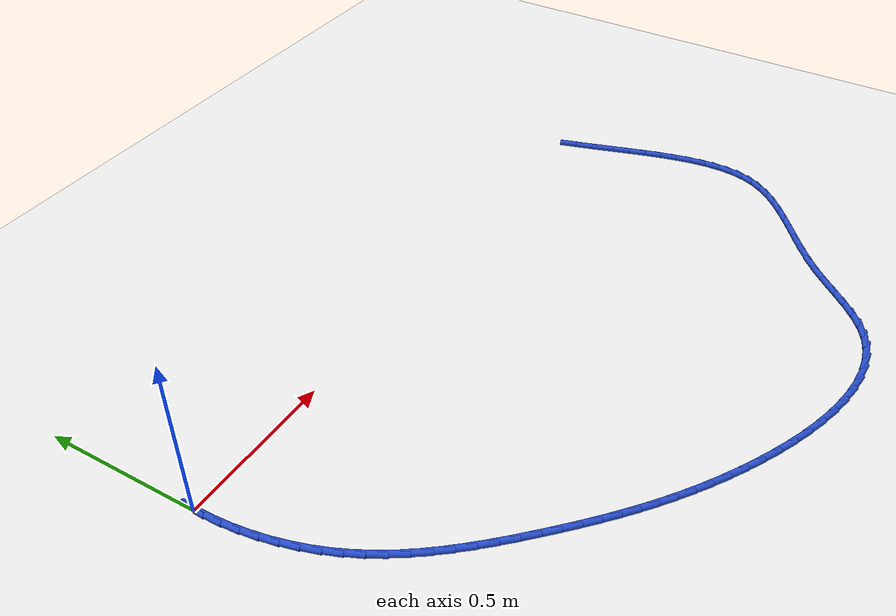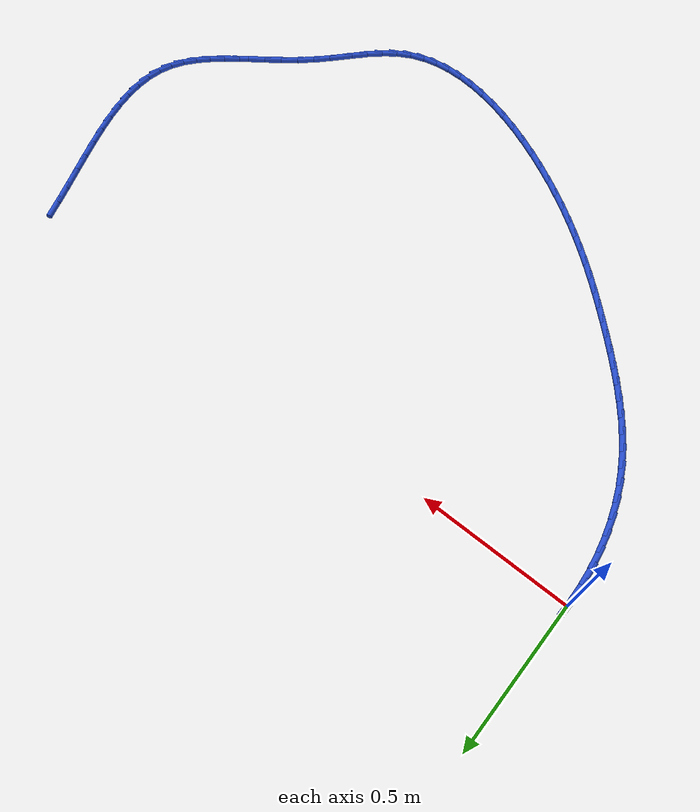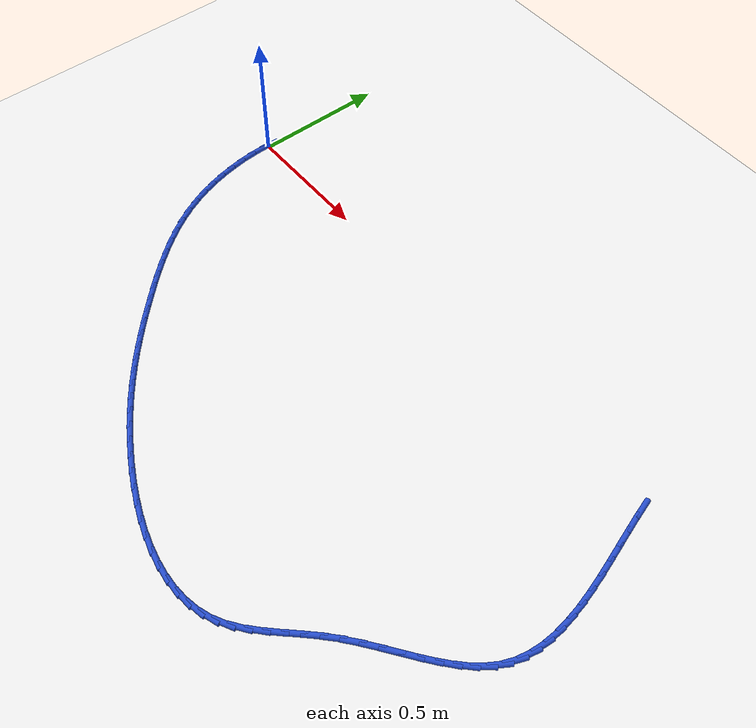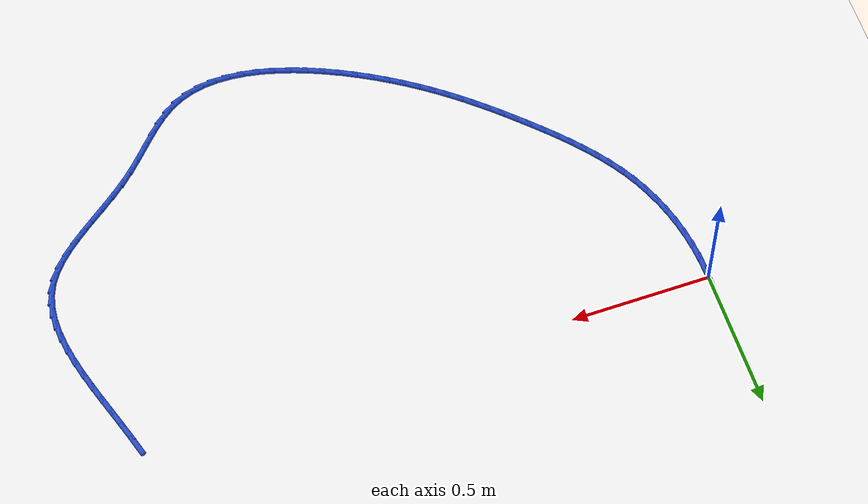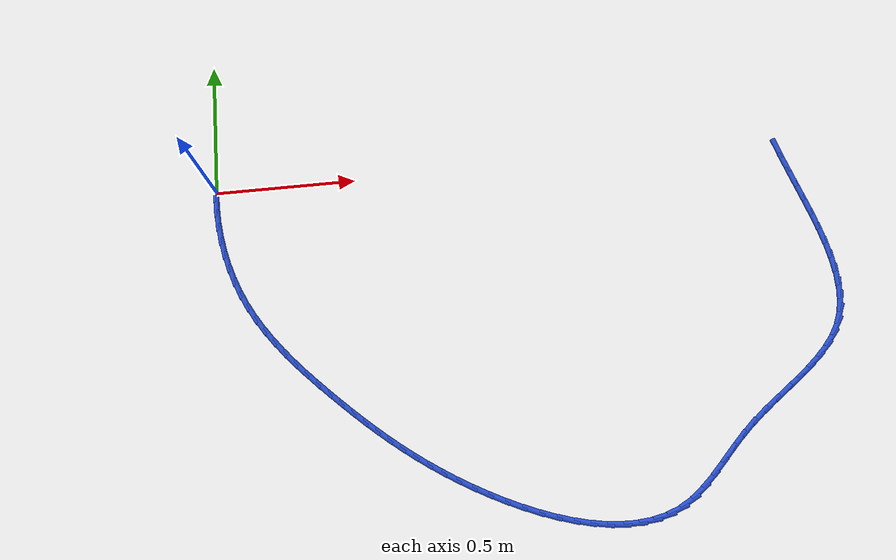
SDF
<sdf version="1.6">
 <world name="default">
  <model name="ground_plane">
   <static>1</static>
   <link name="link">
    <collision name="collision">
     <geometry><plane><normal>0 0 1</normal><size>100 100</size></plane></geometry>
     <surface><friction><ode><mu>100</mu><mu2>50</mu2></ode></friction></surface>
    </collision>
    <visual name="visual">
     <cast_shadows>0</cast_shadows>
     <geometry><plane><normal>0 0 1</normal><size>100 100</size></plane></geometry>
     <material>
      <script><uri>file://media/materials/scripts/gazebo.material</uri><name>Gazebo/WhiteGlow</name></script>
     </material>
    </visual>
   </link>
  </model>
  <model name="line">
   <link name="link_0">
    <pose>-4.5102810375396984e-17 1.8041124150158794e-16 0.01 0 1.57 1.5296454746573978</pose>
    <collision name="collision">
     <geometry><cylinder><radius>0.01</radius><length>0.08</length></cylinder></geometry>
    </collision>
    <visual name="visual">
     <material>
      <script><name>Gazebo/Blue</name><uri>file://media/materials/scripts/gazebo.material</uri></script>
     </material>
     <geometry><cylinder><radius>0.01</radius><length>0.08</length></cylinder></geometry>
    </visual>
   </link>
   <link name="link_71">
    <pose>2.044629872431118 -0.03134437617193089 0.01 0 1.57 -1.2846464202993828</pose>
    <collision name="collision">
     <geometry><cylinder><radius>0.01</radius><length>0.08</length></cylinder></geometry>
    </collision>
    <visual name="visual">
     <material>
      <script><name>Gazebo/Blue</name><uri>file://media/materials/scripts/gazebo.material</uri></script>
     </material>
     <geometry><cylinder><radius>0.01</radius><length>0.08</length></cylinder></geometry>
    </visual>
   </link>
   <link name="link_72">
    <pose>2.061421483469755 -0.08841509417196947 0.01 0 1.57 -1.2688365653599714</pose>
    <collision name="collision">
     <geometry><cylinder><radius>0.01</radius><length>0.08</length></cylinder></geometry>
    </collision>
    <visual name="visual">
     <material>
      <script><name>Gazebo/Blue</name><uri>file://media/materials/scripts/gazebo.material</uri></script>
     </material>
     <geometry><cylinder><radius>0.01</radius><length>0.08</length></cylinder></geometry>
    </visual>
   </link>
   <link name="link_73">
    <pose>2.079237217500759 -0.14561124476211676 0.01 0 1.57 -1.2632478146298742</pose>
    <collision name="collision">
     <geometry><cylinder><radius>0.01</radius><length>0.08</length></cylinder></geometry>
    </collision>
    <visual name="visual">
     <material>
      <script><name>Gazebo/Blue</name><uri>file://media/materials/scripts/gazebo.material</uri></script>
     </material>
     <geometry><cylinder><radius>0.01</radius><length>0.08</length></cylinder></geometry>
    </visual>
   </link>
   <link name="link_74">
    <pose>2.097365198884924 -0.20268449417894266 0.01 0 1.57 -1.2677672863972622</pose>
    <collision name="collision">
     <geometry><cylinder><radius>0.01</radius><length>0.08</length></cylinder></geometry>
    </collision>
    <visual name="visual">
     <material>
      <script><name>Gazebo/Blue</name><uri>file://media/materials/scripts/gazebo.material</uri></script>
     </material>
     <geometry><cylinder><radius>0.01</radius><length>0.08</length></cylinder></geometry>
    </visual>
   </link>
   <link name="link_75">
    <pose>2.115093551983041 -0.25938650865901997 0.01 0 1.57 -1.2827436958456733</pose>
    <collision name="collision">
     <geometry><cylinder><radius>0.01</radius><length>0.08</length></cylinder></geometry>
    </collision>
    <visual name="visual">
     <material>
      <script><name>Gazebo/Blue</name><uri>file://media/materials/scripts/gazebo.material</uri></script>
     </material>
     <geometry><cylinder><radius>0.01</radius><length>0.08</length></cylinder></geometry>
    </visual>
   </link>
   <link name="link_76">
    <pose>2.131710401155903 -0.3154689544389202 0.01 0 1.57 -1.3090175999598392</pose>
    <collision name="collision">
     <geometry><cylinder><radius>0.01</radius><length>0.08</length></cylinder></geometry>
    </collision>
    <visual name="visual">
     <material>
      <script><name>Gazebo/Blue</name><uri>file://media/materials/scripts/gazebo.material</uri></script>
     </material>
     <geometry><cylinder><radius>0.01</radius><length>0.08</length></cylinder></geometry>
    </visual>
   </link>
   <link name="link_77">
    <pose>2.1465038707643016 -0.37068349775521536 0.01 0 1.57 -1.3479676268478287</pose>
    <collision name="collision">
     <geometry><cylinder><radius>0.01</radius><length>0.08</length></cylinder></geometry>
    </collision>
    <visual name="visual">
     <material>
      <script><name>Gazebo/Blue</name><uri>file://media/materials/scripts/gazebo.material</uri></script>
     </material>
     <geometry><cylinder><radius>0.01</radius><length>0.08</length></cylinder></geometry>
    </visual>
   </link>
   <link name="link_78">
    <pose>2.1587620851690295 -0.42478180484447764 0.01 0 1.57 -1.401552070078066</pose>
    <collision name="collision">
     <geometry><cylinder><radius>0.01</radius><length>0.08</length></cylinder></geometry>
    </collision>
    <visual name="visual">
     <material>
      <script><name>Gazebo/Blue</name><uri>file://media/materials/scripts/gazebo.material</uri></script>
     </material>
     <geometry><cylinder><radius>0.01</radius><length>0.08</length></cylinder></geometry>
    </visual>
   </link>
   <link name="link_79">
    <pose>2.1677731687308794 -0.4775155419432776 0.01 0 1.57 -1.4722899991010994</pose>
    <collision name="collision">
     <geometry><cylinder><radius>0.01</radius><length>0.08</length></cylinder></geometry>
    </collision>
    <visual name="visual">
     <material>
      <script><name>Gazebo/Blue</name><uri>file://media/materials/scripts/gazebo.material</uri></script>
     </material>
     <geometry><cylinder><radius>0.01</radius><length>0.08</length></cylinder></geometry>
    </visual>
   </link>
   <link name="link_80">
    <pose>2.172825245810642 -0.5286363752881873 0.01 0 1.57 -1.5630579898648487</pose>
    <collision name="collision">
     <geometry><cylinder><radius>0.01</radius><length>0.08</length></cylinder></geometry>
    </collision>
    <visual name="visual">
     <material>
      <script><name>Gazebo/Blue</name><uri>file://media/materials/scripts/gazebo.material</uri></script>
     </material>
     <geometry><cylinder><radius>0.01</radius><length>0.08</length></cylinder></geometry>
    </visual>
   </link>
   <link name="link_81">
    <pose>2.173206440769112 -0.577895971115779 0.01 0 1.57 1.4651139113369158</pose>
    <collision name="collision">
     <geometry><cylinder><radius>0.01</radius><length>0.08</length></cylinder></geometry>
    </collision>
    <visual name="visual">
     <material>
      <script><name>Gazebo/Blue</name><uri>file://media/materials/scripts/gazebo.material</uri></script>
     </material>
     <geometry><cylinder><radius>0.01</radius><length>0.08</length></cylinder></geometry>
    </visual>
   </link>
   <link name="link_82">
    <pose>2.168204877967081 -0.6250459956626249 0.01 0 1.57 1.327958544917127</pose>
    <collision name="collision">
     <geometry><cylinder><radius>0.01</radius><length>0.08</length></cylinder></geometry>
    </collision>
    <visual name="visual">
     <material>
      <script><name>Gazebo/Blue</name><uri>file://media/materials/scripts/gazebo.material</uri></script>
     </material>
     <geometry><cylinder><radius>0.01</radius><length>0.08</length></cylinder></geometry>
    </visual>
   </link>
   <link name="link_83">
    <pose>2.1571086817653407 -0.6698381151652953 0.01 0 1.57 1.16945373037617</pose>
    <collision name="collision">
     <geometry><cylinder><radius>0.01</radius><length>0.08</length></cylinder></geometry>
    </collision>
    <visual name="visual">
     <material>
      <script><name>Gazebo/Blue</name><uri>file://media/materials/scripts/gazebo.material</uri></script>
     </material>
     <geometry><cylinder><radius>0.01</radius><length>0.08</length></cylinder></geometry>
    </visual>
   </link>
   <link name="link_84">
    <pose>2.1392059765249893 -0.7120239958604985 0.01 0 1.57 1.0041842877567322</pose>
    <collision name="collision">
     <geometry><cylinder><radius>0.01</radius><length>0.08</length></cylinder></geometry>
    </collision>
    <visual name="visual">
     <material>
      <script><name>Gazebo/Blue</name><uri>file://media/materials/scripts/gazebo.material</uri></script>
     </material>
     <geometry><cylinder><radius>0.01</radius><length>0.08</length></cylinder></geometry>
    </visual>
   </link>
   <link name="link_85">
    <pose>2.114095788238602 -0.751493073283529 0.01 0 1.57 0.8683933330845575</pose>
    <collision name="collision">
     <geometry><cylinder><radius>0.01</radius><length>0.08</length></cylinder></geometry>
    </collision>
    <visual name="visual">
     <material>
      <script><name>Gazebo/Blue</name><uri>file://media/materials/scripts/gazebo.material</uri></script>
     </material>
     <geometry><cylinder><radius>0.01</radius><length>0.08</length></cylinder></geometry>
    </visual>
   </link>
   <link name="link_86">
    <pose>2.082617037616839 -0.7886842153570996 0.01 0 1.57 0.7686335841271243</pose>
    <collision name="collision">
     <geometry><cylinder><radius>0.01</radius><length>0.08</length></cylinder></geometry>
    </collision>
    <visual name="visual">
     <material>
      <script><name>Gazebo/Blue</name><uri>file://media/materials/scripts/gazebo.material</uri></script>
     </material>
     <geometry><cylinder><radius>0.01</radius><length>0.08</length></cylinder></geometry>
    </visual>
   </link>
   <link name="link_87">
    <pose>2.045917693865927 -0.8241732381256215 0.01 0 1.57 0.7003007215182602</pose>
    <collision name="collision">
     <geometry><cylinder><radius>0.01</radius><length>0.08</length></cylinder></geometry>
    </collision>
    <visual name="visual">
     <material>
      <script><name>Gazebo/Blue</name><uri>file://media/materials/scripts/gazebo.material</uri></script>
     </material>
     <geometry><cylinder><radius>0.01</radius><length>0.08</length></cylinder></geometry>
    </visual>
   </link>
   <link name="link_88">
    <pose>2.0051457261920933 -0.8585359576335035 0.01 0 1.57 0.6585568605974809</pose>
    <collision name="collision">
     <geometry><cylinder><radius>0.01</radius><length>0.08</length></cylinder></geometry>
    </collision>
    <visual name="visual">
     <material>
      <script><name>Gazebo/Blue</name><uri>file://media/materials/scripts/gazebo.material</uri></script>
     </material>
     <geometry><cylinder><radius>0.01</radius><length>0.08</length></cylinder></geometry>
    </visual>
   </link>
   <link name="link_89">
    <pose>1.9614491038015622 -0.8923481899251571 0.01 0 1.57 0.6397267551622451</pose>
    <collision name="collision">
     <geometry><cylinder><radius>0.01</radius><length>0.08</length></cylinder></geometry>
    </collision>
    <visual name="visual">
     <material>
      <script><name>Gazebo/Blue</name><uri>file://media/materials/scripts/gazebo.material</uri></script>
     </material>
     <geometry><cylinder><radius>0.01</radius><length>0.08</length></cylinder></geometry>
    </visual>
   </link>
   <link name="link_90">
    <pose>1.9159757959005603 -0.9261857510449923 0.01 0 1.57 0.6415852187041018</pose>
    <collision name="collision">
     <geometry><cylinder><radius>0.01</radius><length>0.08</length></cylinder></geometry>
    </collision>
    <visual name="visual">
     <material>
      <script><name>Gazebo/Blue</name><uri>file://media/materials/scripts/gazebo.material</uri></script>
     </material>
     <geometry><cylinder><radius>0.01</radius><length>0.08</length></cylinder></geometry>
    </visual>
   </link>
   <link name="link_91">
    <pose>1.8698737716953133 -0.9606244570374207 0.01 0 1.57 0.6632592107781868</pose>
    <collision name="collision">
     <geometry><cylinder><radius>0.01</radius><length>0.08</length></cylinder></geometry>
    </collision>
    <visual name="visual">
     <material>
      <script><name>Gazebo/Blue</name><uri>file://media/materials/scripts/gazebo.material</uri></script>
     </material>
     <geometry><cylinder><radius>0.01</radius><length>0.08</length></cylinder></geometry>
    </visual>
   </link>
   <link name="link_92">
    <pose>1.8242910003920478 -0.9962401239468511 0.01 0 1.57 0.7050256145618817</pose>
    <collision name="collision">
     <geometry><cylinder><radius>0.01</radius><length>0.08</length></cylinder></geometry>
    </collision>
    <visual name="visual">
     <material>
      <script><name>Gazebo/Blue</name><uri>file://media/materials/scripts/gazebo.material</uri></script>
     </material>
     <geometry><cylinder><radius>0.01</radius><length>0.08</length></cylinder></geometry>
    </visual>
   </link>
   <link name="link_93">
    <pose>1.7803754511969894 -1.0336085678176945 0.01 0 1.57 0.7633028262985336</pose>
    <collision name="collision">
     <geometry><cylinder><radius>0.01</radius><length>0.08</length></cylinder></geometry>
    </collision>
    <visual name="visual">
     <material>
      <script><name>Gazebo/Blue</name><uri>file://media/materials/scripts/gazebo.material</uri></script>
     </material>
     <geometry><cylinder><radius>0.01</radius><length>0.08</length></cylinder></geometry>
    </visual>
   </link>
   <link name="link_94">
    <pose>1.7390823418717614 -1.0731160698084714 0.01 0 1.57 0.8052573900368956</pose>
    <collision name="collision">
     <geometry><cylinder><radius>0.01</radius><length>0.08</length></cylinder></geometry>
    </collision>
    <visual name="visual">
     <material>
      <script><name>Gazebo/Blue</name><uri>file://media/materials/scripts/gazebo.material</uri></script>
     </material>
     <geometry><cylinder><radius>0.01</radius><length>0.08</length></cylinder></geometry>
    </visual>
   </link>
   <link name="link_95">
    <pose>1.6999888999110546 -1.1137939161590416 0.01 0 1.57 0.8157346430985165</pose>
    <collision name="collision">
     <geometry><cylinder><radius>0.01</radius><length>0.08</length></cylinder></geometry>
    </collision>
    <visual name="visual">
     <material>
      <script><name>Gazebo/Blue</name><uri>file://media/materials/scripts/gazebo.material</uri></script>
     </material>
     <geometry><cylinder><radius>0.01</radius><length>0.08</length></cylinder></geometry>
    </visual>
   </link>
   <link name="link_96">
    <pose>1.6620724947109167 -1.1540835452017084 0.01 0 1.57 0.7929659171845586</pose>
    <collision name="collision">
     <geometry><cylinder><radius>0.01</radius><length>0.08</length></cylinder></geometry>
    </collision>
    <visual name="visual">
     <material>
      <script><name>Gazebo/Blue</name><uri>file://media/materials/scripts/gazebo.material</uri></script>
     </material>
     <geometry><cylinder><radius>0.01</radius><length>0.08</length></cylinder></geometry>
    </visual>
   </link>
   <link name="link_97">
    <pose>1.624308026587648 -1.192423967392043 0.01 0 1.57 0.7336203923205585</pose>
    <collision name="collision">
     <geometry><cylinder><radius>0.01</radius><length>0.08</length></cylinder></geometry>
    </collision>
    <visual name="visual">
     <material>
      <script><name>Gazebo/Blue</name><uri>file://media/materials/scripts/gazebo.material</uri></script>
     </material>
     <geometry><cylinder><radius>0.01</radius><length>0.08</length></cylinder></geometry>
    </visual>
   </link>
   <link name="link_98">
    <pose>1.5856703958575498 -1.2272541931856165 0.01 0 1.57 0.6332735098976295</pose>
    <collision name="collision">
     <geometry><cylinder><radius>0.01</radius><length>0.08</length></cylinder></geometry>
    </collision>
    <visual name="visual">
     <material>
      <script><name>Gazebo/Blue</name><uri>file://media/materials/scripts/gazebo.material</uri></script>
     </material>
     <geometry><cylinder><radius>0.01</radius><length>0.08</length></cylinder></geometry>
    </visual>
   </link>
   <link name="link_99">
    <pose>1.5451345028369246 -1.257013233038 0.01 0 1.57 0.4910671326124244</pose>
    <collision name="collision">
     <geometry><cylinder><radius>0.01</radius><length>0.08</length></cylinder></geometry>
    </collision>
    <visual name="visual">
     <material>
      <script><name>Gazebo/Blue</name><uri>file://media/materials/scripts/gazebo.material</uri></script>
     </material>
     <geometry><cylinder><radius>0.01</radius><length>0.08</length></cylinder></geometry>
    </visual>
   </link>
   <link name="link_100">
    <pose>1.501733287303715 -1.280222452420368 0.01 0 1.57 0.3377209704262483</pose>
    <collision name="collision">
     <geometry><cylinder><radius>0.01</radius><length>0.08</length></cylinder></geometry>
    </collision>
    <visual name="visual">
     <material>
      <script><name>Gazebo/Blue</name><uri>file://media/materials/scripts/gazebo.material</uri></script>
     </material>
     <geometry><cylinder><radius>0.01</radius><length>0.08</length></cylinder></geometry>
    </visual>
   </link>
   <link name="link_101">
    <pose>1.4552942562338012 -1.296530666854787 0.01 0 1.57 0.1985432945511731</pose>
    <collision name="collision">
     <geometry><cylinder><radius>0.01</radius><length>0.08</length></cylinder></geometry>
    </collision>
    <visual name="visual">
     <material>
      <script><name>Gazebo/Blue</name><uri>file://media/materials/scripts/gazebo.material</uri></script>
     </material>
     <geometry><cylinder><radius>0.01</radius><length>0.08</length></cylinder></geometry>
    </visual>
   </link>
   <link name="link_102">
    <pose>1.40622086603541 -1.306403934531418 0.01 0 1.57 0.07632957501409585</pose>
    <collision name="collision">
     <geometry><cylinder><radius>0.01</radius><length>0.08</length></cylinder></geometry>
    </collision>
    <visual name="visual">
     <material>
      <script><name>Gazebo/Blue</name><uri>file://media/materials/scripts/gazebo.material</uri></script>
     </material>
     <geometry><cylinder><radius>0.01</radius><length>0.08</length></cylinder></geometry>
    </visual>
   </link>
   <link name="link_103">
    <pose>1.3549294649129666 -1.3103266064371977 0.01 0 1.57 -0.029064779685189574</pose>
    <collision name="collision">
     <geometry><cylinder><radius>0.01</radius><length>0.08</length></cylinder></geometry>
    </collision>
    <visual name="visual">
     <material>
      <script><name>Gazebo/Blue</name><uri>file://media/materials/scripts/gazebo.material</uri></script>
     </material>
     <geometry><cylinder><radius>0.01</radius><length>0.08</length></cylinder></geometry>
    </visual>
   </link>
   <link name="link_104">
    <pose>1.3018364010708967 -1.3087830335590647 0.01 0 1.57 -0.1192128851624312</pose>
    <collision name="collision">
     <geometry><cylinder><radius>0.01</radius><length>0.08</length></cylinder></geometry>
    </collision>
    <visual name="visual">
     <material>
      <script><name>Gazebo/Blue</name><uri>file://media/materials/scripts/gazebo.material</uri></script>
     </material>
     <geometry><cylinder><radius>0.01</radius><length>0.08</length></cylinder></geometry>
    </visual>
   </link>
   <link name="link_105">
    <pose>1.2473580227136258 -1.3022575668839553 0.01 0 1.57 -0.1962427901173266</pose>
    <collision name="collision">
     <geometry><cylinder><radius>0.01</radius><length>0.08</length></cylinder></geometry>
    </collision>
    <visual name="visual">
     <material>
      <script><name>Gazebo/Blue</name><uri>file://media/materials/scripts/gazebo.material</uri></script>
     </material>
     <geometry><cylinder><radius>0.01</radius><length>0.08</length></cylinder></geometry>
    </visual>
   </link>
   <link name="link_106">
    <pose>1.1919106780455797 -1.291234557398808 0.01 0 1.57 -0.26231674699623214</pose>
    <collision name="collision">
     <geometry><cylinder><radius>0.01</radius><length>0.08</length></cylinder></geometry>
    </collision>
    <visual name="visual">
     <material>
      <script><name>Gazebo/Blue</name><uri>file://media/materials/scripts/gazebo.material</uri></script>
     </material>
     <geometry><cylinder><radius>0.01</radius><length>0.08</length></cylinder></geometry>
    </visual>
   </link>
   <link name="link_107">
    <pose>1.1359107152711825 -1.2761983560905592 0.01 0 1.57 -0.3193913705651794</pose>
    <collision name="collision">
     <geometry><cylinder><radius>0.01</radius><length>0.08</length></cylinder></geometry>
    </collision>
    <visual name="visual">
     <material>
      <script><name>Gazebo/Blue</name><uri>file://media/materials/scripts/gazebo.material</uri></script>
     </material>
     <geometry><cylinder><radius>0.01</radius><length>0.08</length></cylinder></geometry>
    </visual>
   </link>
   <link name="link_108">
    <pose>1.0797744825948599 -1.2576333139461475 0.01 0 1.57 -0.3691436083499308</pose>
    <collision name="collision">
     <geometry><cylinder><radius>0.01</radius><length>0.08</length></cylinder></geometry>
    </collision>
    <visual name="visual">
     <material>
      <script><name>Gazebo/Blue</name><uri>file://media/materials/scripts/gazebo.material</uri></script>
     </material>
     <geometry><cylinder><radius>0.01</radius><length>0.08</length></cylinder></geometry>
    </visual>
   </link>
   <link name="link_109">
    <pose>1.0239183282210365 -1.2360237819525093 0.01 0 1.57 -0.41297772692147344</pose>
    <collision name="collision">
     <geometry><cylinder><radius>0.01</radius><length>0.08</length></cylinder></geometry>
    </collision>
    <visual name="visual">
     <material>
      <script><name>Gazebo/Blue</name><uri>file://media/materials/scripts/gazebo.material</uri></script>
     </material>
     <geometry><cylinder><radius>0.01</radius><length>0.08</length></cylinder></geometry>
    </visual>
   </link>
   <link name="link_110">
    <pose>0.9687586003541391 -1.2118541110965826 0.01 0 1.57 -0.45206525478417614</pose>
    <collision name="collision">
     <geometry><cylinder><radius>0.01</radius><length>0.08</length></cylinder></geometry>
    </collision>
    <visual name="visual">
     <material>
      <script><name>Gazebo/Blue</name><uri>file://media/materials/scripts/gazebo.material</uri></script>
     </material>
     <geometry><cylinder><radius>0.01</radius><length>0.08</length></cylinder></geometry>
    </visual>
   </link>
   <link name="link_111">
    <pose>0.9147116471985921 -1.1856086523653049 0.01 0 1.57 -0.4873949336342789</pose>
    <collision name="collision">
     <geometry><cylinder><radius>0.01</radius><length>0.08</length></cylinder></geometry>
    </collision>
    <visual name="visual">
     <material>
      <script><name>Gazebo/Blue</name><uri>file://media/materials/scripts/gazebo.material</uri></script>
     </material>
     <geometry><cylinder><radius>0.01</radius><length>0.08</length></cylinder></geometry>
    </visual>
   </link>
   <link name="link_112">
    <pose>0.8621938169588206 -1.1577717567456136 0.01 0 1.57 -0.5198320597543117</pose>
    <collision name="collision">
     <geometry><cylinder><radius>0.01</radius><length>0.08</length></cylinder></geometry>
    </collision>
    <visual name="visual">
     <material>
      <script><name>Gazebo/Blue</name><uri>file://media/materials/scripts/gazebo.material</uri></script>
     </material>
     <geometry><cylinder><radius>0.01</radius><length>0.08</length></cylinder></geometry>
    </visual>
   </link>
   <link name="link_113">
    <pose>0.8116188708479916 -1.128825749941779 0.01 0 1.57 -0.5506911408883514</pose>
    <collision name="collision">
     <geometry><cylinder><radius>0.01</radius><length>0.08</length></cylinder></geometry>
    </collision>
    <visual name="visual">
     <material>
      <script><name>Gazebo/Blue</name><uri>file://media/materials/scripts/gazebo.material</uri></script>
     </material>
     <geometry><cylinder><radius>0.01</radius><length>0.08</length></cylinder></geometry>
    </visual>
   </link>
   <link name="link_114">
    <pose>0.7631874885778818 -1.0990861421460034 0.01 0 1.57 -0.5810527011926484</pose>
    <collision name="collision">
     <geometry><cylinder><radius>0.01</radius><length>0.08</length></cylinder></geometry>
    </collision>
    <visual name="visual">
     <material>
      <script><name>Gazebo/Blue</name><uri>file://media/materials/scripts/gazebo.material</uri></script>
     </material>
     <geometry><cylinder><radius>0.01</radius><length>0.08</length></cylinder></geometry>
    </visual>
   </link>
   <link name="link_115">
    <pose>0.7167316450930559 -1.068579794962307 0.01 0 1.57 -0.6106573761209133</pose>
    <collision name="collision">
     <geometry><cylinder><radius>0.01</radius><length>0.08</length></cylinder></geometry>
    </collision>
    <visual name="visual">
     <material>
      <script><name>Gazebo/Blue</name><uri>file://media/materials/scripts/gazebo.material</uri></script>
     </material>
     <geometry><cylinder><radius>0.01</radius><length>0.08</length></cylinder></geometry>
    </visual>
   </link>
   <link name="link_116">
    <pose>0.6720466391020639 -1.037304857201475 0.01 0 1.57 -0.6391264515433946</pose>
    <collision name="collision">
     <geometry><cylinder><radius>0.01</radius><length>0.08</length></cylinder></geometry>
    </collision>
    <visual name="visual">
     <material>
      <script><name>Gazebo/Blue</name><uri>file://media/materials/scripts/gazebo.material</uri></script>
     </material>
     <geometry><cylinder><radius>0.01</radius><length>0.08</length></cylinder></geometry>
    </visual>
   </link>
   <link name="link_117">
    <pose>0.6289277693134546 -1.0052594776742918 0.01 0 1.57 -0.6660915208907963</pose>
    <collision name="collision">
     <geometry><cylinder><radius>0.01</radius><length>0.08</length></cylinder></geometry>
    </collision>
    <visual name="visual">
     <material>
      <script><name>Gazebo/Blue</name><uri>file://media/materials/scripts/gazebo.material</uri></script>
     </material>
     <geometry><cylinder><radius>0.01</radius><length>0.08</length></cylinder></geometry>
    </visual>
   </link>
   <link name="link_118">
    <pose>0.5871703344357797 -0.9724418051915443 0.01 0 1.57 -0.6912088056951492</pose>
    <collision name="collision">
     <geometry><cylinder><radius>0.01</radius><length>0.08</length></cylinder></geometry>
    </collision>
    <visual name="visual">
     <material>
      <script><name>Gazebo/Blue</name><uri>file://media/materials/scripts/gazebo.material</uri></script>
     </material>
     <geometry><cylinder><radius>0.01</radius><length>0.08</length></cylinder></geometry>
    </visual>
   </link>
   <link name="link_119">
    <pose>0.5465696331775881 -0.9388499885640166 0.01 0 1.57 -0.7141718146856084</pose>
    <collision name="collision">
     <geometry><cylinder><radius>0.01</radius><length>0.08</length></cylinder></geometry>
    </collision>
    <visual name="visual">
     <material>
      <script><name>Gazebo/Blue</name><uri>file://media/materials/scripts/gazebo.material</uri></script>
     </material>
     <geometry><cylinder><radius>0.01</radius><length>0.08</length></cylinder></geometry>
    </visual>
   </link>
   <link name="link_120">
    <pose>0.5069209642474298 -0.9044821766024944 0.01 0 1.57 -0.7347213769090307</pose>
    <collision name="collision">
     <geometry><cylinder><radius>0.01</radius><length>0.08</length></cylinder></geometry>
    </collision>
    <visual name="visual">
     <material>
      <script><name>Gazebo/Blue</name><uri>file://media/materials/scripts/gazebo.material</uri></script>
     </material>
     <geometry><cylinder><radius>0.01</radius><length>0.08</length></cylinder></geometry>
    </visual>
   </link>
   <link name="link_121">
    <pose>0.46801962635385436 -0.8693365181177624 0.01 0 1.57 -0.7526524841450288</pose>
    <collision name="collision">
     <geometry><cylinder><radius>0.01</radius><length>0.08</length></cylinder></geometry>
    </collision>
    <visual name="visual">
     <material>
      <script><name>Gazebo/Blue</name><uri>file://media/materials/scripts/gazebo.material</uri></script>
     </material>
     <geometry><cylinder><radius>0.01</radius><length>0.08</length></cylinder></geometry>
    </visual>
   </link>
   <link name="link_122">
    <pose>0.42966091820541147 -0.8334111619206059 0.01 0 1.57 -0.7678178083047845</pose>
    <collision name="collision">
     <geometry><cylinder><radius>0.01</radius><length>0.08</length></cylinder></geometry>
    </collision>
    <visual name="visual">
     <material>
      <script><name>Gazebo/Blue</name><uri>file://media/materials/scripts/gazebo.material</uri></script>
     </material>
     <geometry><cylinder><radius>0.01</radius><length>0.08</length></cylinder></geometry>
    </visual>
   </link>
   <link name="link_123">
    <pose>0.39164013851065177 -0.7967042568218109 0.01 0 1.57 -0.7804536657588778</pose>
    <collision name="collision">
     <geometry><cylinder><radius>0.01</radius><length>0.08</length></cylinder></geometry>
    </collision>
    <visual name="visual">
     <material>
      <script><name>Gazebo/Blue</name><uri>file://media/materials/scripts/gazebo.material</uri></script>
     </material>
     <geometry><cylinder><radius>0.01</radius><length>0.08</length></cylinder></geometry>
    </visual>
   </link>
   <link name="link_124">
    <pose>0.3537733283361311 -0.7592100719460166 0.01 0 1.57 -0.7953761321999677</pose>
    <collision name="collision">
     <geometry><cylinder><radius>0.01</radius><length>0.08</length></cylinder></geometry>
    </collision>
    <visual name="visual">
     <material>
      <script><name>Gazebo/Blue</name><uri>file://media/materials/scripts/gazebo.material</uri></script>
     </material>
     <geometry><cylinder><radius>0.01</radius><length>0.08</length></cylinder></geometry>
    </visual>
   </link>
   <link name="link_125">
    <pose>0.3161859373447448 -0.720865004104395 0.01 0 1.57 -0.8163288921497441</pose>
    <collision name="collision">
     <geometry><cylinder><radius>0.01</radius><length>0.08</length></cylinder></geometry>
    </collision>
    <visual name="visual">
     <material>
      <script><name>Gazebo/Blue</name><uri>file://media/materials/scripts/gazebo.material</uri></script>
     </material>
     <geometry><cylinder><radius>0.01</radius><length>0.08</length></cylinder></geometry>
    </visual>
   </link>
   <link name="link_126">
    <pose>0.2792411092569677 -0.6815609914047329 0.01 0 1.57 -0.8435085547798359</pose>
    <collision name="collision">
     <geometry><cylinder><radius>0.01</radius><length>0.08</length></cylinder></geometry>
    </collision>
    <visual name="visual">
     <material>
      <script><name>Gazebo/Blue</name><uri>file://media/materials/scripts/gazebo.material</uri></script>
     </material>
     <geometry><cylinder><radius>0.01</radius><length>0.08</length></cylinder></geometry>
    </visual>
   </link>
   <link name="link_127">
    <pose>0.24330807391452128 -0.6411888335962831 0.01 0 1.57 -0.8770897573763033</pose>
    <collision name="collision">
     <geometry><cylinder><radius>0.01</radius><length>0.08</length></cylinder></geometry>
    </collision>
    <visual name="visual">
     <material>
      <script><name>Gazebo/Blue</name><uri>file://media/materials/scripts/gazebo.material</uri></script>
     </material>
     <geometry><cylinder><radius>0.01</radius><length>0.08</length></cylinder></geometry>
    </visual>
   </link>
   <link name="link_128">
    <pose>0.20875606115912518 -0.5996393304282968 0.01 0 1.57 -0.9172903610521179</pose>
    <collision name="collision">
     <geometry><cylinder><radius>0.01</radius><length>0.08</length></cylinder></geometry>
    </collision>
    <visual name="visual">
     <material>
      <script><name>Gazebo/Blue</name><uri>file://media/materials/scripts/gazebo.material</uri></script>
     </material>
     <geometry><cylinder><radius>0.01</radius><length>0.08</length></cylinder></geometry>
    </visual>
   </link>
   <link name="link_129">
    <pose>0.1759543008324998 -0.5568032816500257 0.01 0 1.57 -0.9643311917962285</pose>
    <collision name="collision">
     <geometry><cylinder><radius>0.01</radius><length>0.08</length></cylinder></geometry>
    </collision>
    <visual name="visual">
     <material>
      <script><name>Gazebo/Blue</name><uri>file://media/materials/scripts/gazebo.material</uri></script>
     </material>
     <geometry><cylinder><radius>0.01</radius><length>0.08</length></cylinder></geometry>
    </visual>
   </link>
   <link name="link_130">
    <pose>0.14527202277636528 -0.5125714870107215 0.01 0 1.57 -1.0183823986611384</pose>
    <collision name="collision">
     <geometry><cylinder><radius>0.01</radius><length>0.08</length></cylinder></geometry>
    </collision>
    <visual name="visual">
     <material>
      <script><name>Gazebo/Blue</name><uri>file://media/materials/scripts/gazebo.material</uri></script>
     </material>
     <geometry><cylinder><radius>0.01</radius><length>0.08</length></cylinder></geometry>
    </visual>
   </link>
   <link name="link_131">
    <pose>0.11707845683244178 -0.46683474625963584 0.01 0 1.57 -1.0794537894784706</pose>
    <collision name="collision">
     <geometry><cylinder><radius>0.01</radius><length>0.08</length></cylinder></geometry>
    </collision>
    <visual name="visual">
     <material>
      <script><name>Gazebo/Blue</name><uri>file://media/materials/scripts/gazebo.material</uri></script>
     </material>
     <geometry><cylinder><radius>0.01</radius><length>0.08</length></cylinder></geometry>
    </visual>
   </link>
   <link name="link_132">
    <pose>0.09174111458606635 -0.41948530653005367 0.01 0 1.57 -1.144297913619835</pose>
    <collision name="collision">
     <geometry><cylinder><radius>0.01</radius><length>0.08</length></cylinder></geometry>
    </collision>
    <visual name="visual">
     <material>
      <script><name>Gazebo/Blue</name><uri>file://media/materials/scripts/gazebo.material</uri></script>
     </material>
     <geometry><cylinder><radius>0.01</radius><length>0.08</length></cylinder></geometry>
    </visual>
   </link>
   <link name="link_133">
    <pose>0.06949498476046875 -0.3705270464185964 0.01 0 1.57 -1.2076121998237819</pose>
    <collision name="collision">
     <geometry><cylinder><radius>0.01</radius><length>0.08</length></cylinder></geometry>
    </collision>
    <visual name="visual">
     <material>
      <script><name>Gazebo/Blue</name><uri>file://media/materials/scripts/gazebo.material</uri></script>
     </material>
     <geometry><cylinder><radius>0.01</radius><length>0.08</length></cylinder></geometry>
    </visual>
   </link>
   <link name="link_134">
    <pose>0.05035065729407766 -0.32015286824443806 0.01 0 1.57 -1.2690558415701874</pose>
    <collision name="collision">
     <geometry><cylinder><radius>0.01</radius><length>0.08</length></cylinder></geometry>
    </collision>
    <visual name="visual">
     <material>
      <script><name>Gazebo/Blue</name><uri>file://media/materials/scripts/gazebo.material</uri></script>
     </material>
     <geometry><cylinder><radius>0.01</radius><length>0.08</length></cylinder></geometry>
    </visual>
   </link>
   <link name="link_135">
    <pose>0.03429701536476662 -0.26857395915252813 0.01 0 1.57 -1.328846178293434</pose>
    <collision name="collision">
     <geometry><cylinder><radius>0.01</radius><length>0.08</length></cylinder></geometry>
    </collision>
    <visual name="visual">
     <material>
      <script><name>Gazebo/Blue</name><uri>file://media/materials/scripts/gazebo.material</uri></script>
     </material>
     <geometry><cylinder><radius>0.01</radius><length>0.08</length></cylinder></geometry>
    </visual>
   </link>
   <link name="link_136">
    <pose>0.02132294215040993 -0.2160015062878192 0.01 0 1.57 -1.3872306913657915</pose>
    <collision name="collision">
     <geometry><cylinder><radius>0.01</radius><length>0.08</length></cylinder></geometry>
    </collision>
    <visual name="visual">
     <material>
      <script><name>Gazebo/Blue</name><uri>file://media/materials/scripts/gazebo.material</uri></script>
     </material>
     <geometry><cylinder><radius>0.01</radius><length>0.08</length></cylinder></geometry>
    </visual>
   </link>
   <link name="link_137">
    <pose>0.011417320828881125 -0.16264669679526128 0.01 0 1.57 -1.444478302205534</pose>
    <collision name="collision">
     <geometry><cylinder><radius>0.01</radius><length>0.08</length></cylinder></geometry>
    </collision>
    <visual name="visual">
     <material>
      <script><name>Gazebo/Blue</name><uri>file://media/materials/scripts/gazebo.material</uri></script>
     </material>
     <geometry><cylinder><radius>0.01</radius><length>0.08</length></cylinder></geometry>
    </visual>
   </link>
   <link name="link_138">
    <pose>0.004569034578054002 -0.10872071781980507 0.01 0 1.57 -1.5008727333886427</pose>
    <collision name="collision">
     <geometry><cylinder><radius>0.01</radius><length>0.08</length></cylinder></geometry>
    </collision>
    <visual name="visual">
     <material>
      <script><name>Gazebo/Blue</name><uri>file://media/materials/scripts/gazebo.material</uri></script>
     </material>
     <geometry><cylinder><radius>0.01</radius><length>0.08</length></cylinder></geometry>
    </visual>
   </link>
   <link name="link_139">
    <pose>0.0007669665758023407 -0.05443475650640136 0.01 0 1.57 -1.556707610709901</pose>
    <collision name="collision">
     <geometry><cylinder><radius>0.01</radius><length>0.08</length></cylinder></geometry>
    </collision>
    <visual name="visual">
     <material>
      <script><name>Gazebo/Blue</name><uri>file://media/materials/scripts/gazebo.material</uri></script>
     </material>
     <geometry><cylinder><radius>0.01</radius><length>0.08</length></cylinder></geometry>
    </visual>
   </link>
   <link name="link_140">
    <pose>-4.336808689942018e-17 5.551115123125783e-17 0.01 0 1.57 1.5293097550713364</pose>
    <collision name="collision">
     <geometry><cylinder><radius>0.01</radius><length>0.08</length></cylinder></geometry>
    </collision>
    <visual name="visual">
     <material>
      <script><name>Gazebo/Blue</name><uri>file://media/materials/scripts/gazebo.material</uri></script>
     </material>
     <geometry><cylinder><radius>0.01</radius><length>0.08</length></cylinder></geometry>
    </visual>
   </link>
  </model>
 </world>
</sdf>
